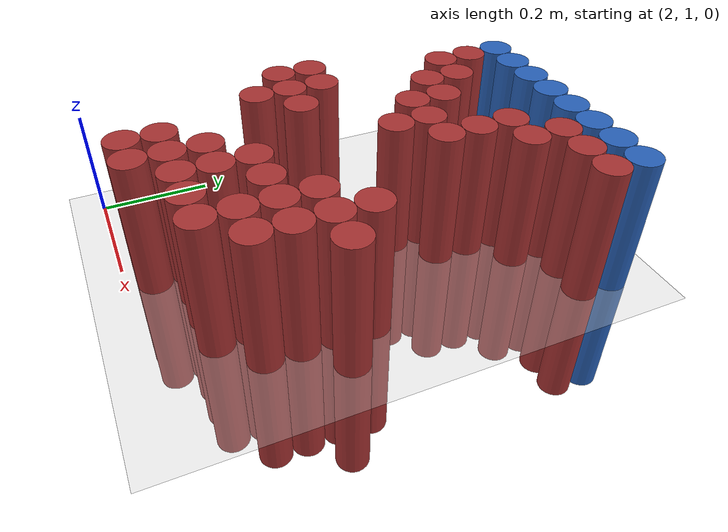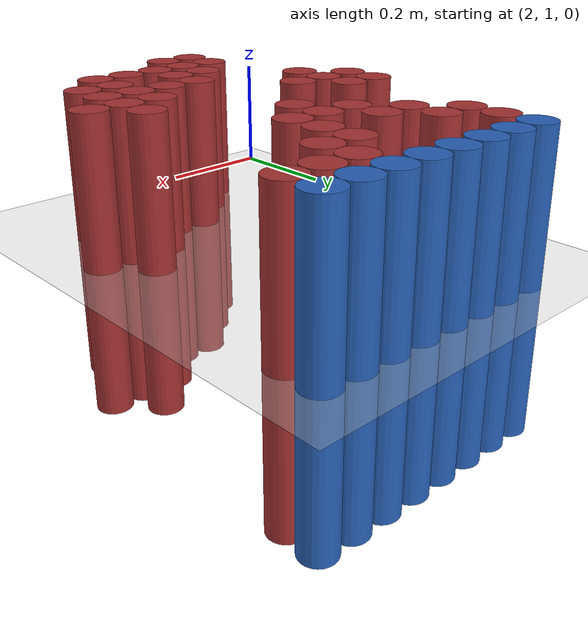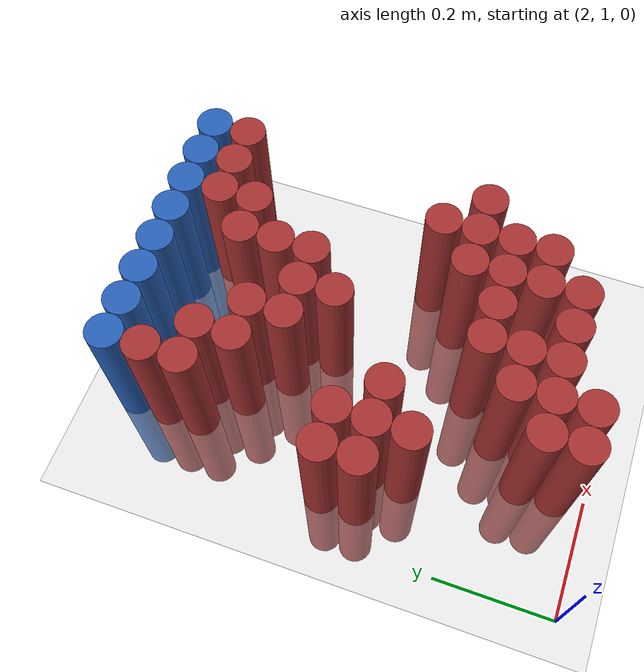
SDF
<sdf version="1.6">
 <world name="default">
  <model name="ground_plane">
   <static>1</static>
   <link name="link">
    <collision name="collision">
     <geometry><plane><normal>0 0 1</normal><size>100 100</size></plane></geometry>
     <surface><friction><ode><mu>100</mu><mu2>50</mu2></ode></friction></surface>
    </collision>
    <visual name="visual">
     <cast_shadows>0</cast_shadows>
     <geometry><plane><normal>0 0 1</normal><size>100 100</size></plane></geometry>
     <material>
      <script><uri>file://media/materials/scripts/gazebo.material</uri><name>Gazebo/Grey</name></script>
     </material>
    </visual>
   </link>
  </model>
  <model name="unit_cylinder_96">
   <static>1</static>
   <pose>2.130000 1.770000 0.000000 0.000000 0.000000 0.000000</pose>
   <link name="link">
    <inertial>
     <mass>1</mass>
     <inertia><ixx>0.145833</ixx><ixy>0</ixy><ixz>0</ixz><iyy>0.145833</iyy><iyz>0</iyz><izz>0.125</izz></inertia>
    </inertial>
    <collision name="collision">
     <geometry><cylinder><radius>0.030000</radius><length>0.5</length></cylinder></geometry>
    </collision>
    <visual name="visual">
     <geometry><cylinder><radius>0.030000</radius><length>0.5</length></cylinder></geometry>
     <material>
      <ambient>0.152000 0.379000 0.720000 1</ambient>
      <diffuse>0.152000 0.379000 0.720000 1</diffuse>
     </material>
     <material>
      <script><name>Gazebo/Grey</name><uri>file://media/materials/scripts/gazebo.material</uri></script>
     </material>
    </visual>
   </link>
  </model>
  <model name="unit_cylinder_97">
   <static>1</static>
   <pose>2.190000 1.770000 0.000000 0.000000 0.000000 0.000000</pose>
   <link name="link">
    <inertial>
     <mass>1</mass>
     <inertia><ixx>0.145833</ixx><ixy>0</ixy><ixz>0</ixz><iyy>0.145833</iyy><iyz>0</iyz><izz>0.125</izz></inertia>
    </inertial>
    <collision name="collision">
     <geometry><cylinder><radius>0.030000</radius><length>0.5</length></cylinder></geometry>
    </collision>
    <visual name="visual">
     <geometry><cylinder><radius>0.030000</radius><length>0.5</length></cylinder></geometry>
     <material>
      <ambient>0.152000 0.379000 0.720000 1</ambient>
      <diffuse>0.152000 0.379000 0.720000 1</diffuse>
     </material>
     <material>
      <script><name>Gazebo/Grey</name><uri>file://media/materials/scripts/gazebo.material</uri></script>
     </material>
    </visual>
   </link>
  </model>
  <model name="unit_cylinder_98">
   <static>1</static>
   <pose>2.250000 1.770000 0.000000 0.000000 0.000000 0.000000</pose>
   <link name="link">
    <inertial>
     <mass>1</mass>
     <inertia><ixx>0.145833</ixx><ixy>0</ixy><ixz>0</ixz><iyy>0.145833</iyy><iyz>0</iyz><izz>0.125</izz></inertia>
    </inertial>
    <collision name="collision">
     <geometry><cylinder><radius>0.030000</radius><length>0.5</length></cylinder></geometry>
    </collision>
    <visual name="visual">
     <geometry><cylinder><radius>0.030000</radius><length>0.5</length></cylinder></geometry>
     <material>
      <ambient>0.152000 0.379000 0.720000 1</ambient>
      <diffuse>0.152000 0.379000 0.720000 1</diffuse>
     </material>
     <material>
      <script><name>Gazebo/Grey</name><uri>file://media/materials/scripts/gazebo.material</uri></script>
     </material>
    </visual>
   </link>
  </model>
  <model name="unit_cylinder_99">
   <static>1</static>
   <pose>2.310000 1.770000 0.000000 0.000000 0.000000 0.000000</pose>
   <link name="link">
    <inertial>
     <mass>1</mass>
     <inertia><ixx>0.145833</ixx><ixy>0</ixy><ixz>0</ixz><iyy>0.145833</iyy><iyz>0</iyz><izz>0.125</izz></inertia>
    </inertial>
    <collision name="collision">
     <geometry><cylinder><radius>0.030000</radius><length>0.5</length></cylinder></geometry>
    </collision>
    <visual name="visual">
     <geometry><cylinder><radius>0.030000</radius><length>0.5</length></cylinder></geometry>
     <material>
      <ambient>0.152000 0.379000 0.720000 1</ambient>
      <diffuse>0.152000 0.379000 0.720000 1</diffuse>
     </material>
     <material>
      <script><name>Gazebo/Grey</name><uri>file://media/materials/scripts/gazebo.material</uri></script>
     </material>
    </visual>
   </link>
  </model>
  <model name="unit_cylinder_100">
   <static>1</static>
   <pose>2.370000 1.770000 0.000000 0.000000 0.000000 0.000000</pose>
   <link name="link">
    <inertial>
     <mass>1</mass>
     <inertia><ixx>0.145833</ixx><ixy>0</ixy><ixz>0</ixz><iyy>0.145833</iyy><iyz>0</iyz><izz>0.125</izz></inertia>
    </inertial>
    <collision name="collision">
     <geometry><cylinder><radius>0.030000</radius><length>0.5</length></cylinder></geometry>
    </collision>
    <visual name="visual">
     <geometry><cylinder><radius>0.030000</radius><length>0.5</length></cylinder></geometry>
     <material>
      <ambient>0.152000 0.379000 0.720000 1</ambient>
      <diffuse>0.152000 0.379000 0.720000 1</diffuse>
     </material>
     <material>
      <script><name>Gazebo/Grey</name><uri>file://media/materials/scripts/gazebo.material</uri></script>
     </material>
    </visual>
   </link>
  </model>
  <model name="unit_cylinder_101">
   <static>1</static>
   <pose>2.430000 1.770000 0.000000 0.000000 0.000000 0.000000</pose>
   <link name="link">
    <inertial>
     <mass>1</mass>
     <inertia><ixx>0.145833</ixx><ixy>0</ixy><ixz>0</ixz><iyy>0.145833</iyy><iyz>0</iyz><izz>0.125</izz></inertia>
    </inertial>
    <collision name="collision">
     <geometry><cylinder><radius>0.030000</radius><length>0.5</length></cylinder></geometry>
    </collision>
    <visual name="visual">
     <geometry><cylinder><radius>0.030000</radius><length>0.5</length></cylinder></geometry>
     <material>
      <ambient>0.152000 0.379000 0.720000 1</ambient>
      <diffuse>0.152000 0.379000 0.720000 1</diffuse>
     </material>
     <material>
      <script><name>Gazebo/Grey</name><uri>file://media/materials/scripts/gazebo.material</uri></script>
     </material>
    </visual>
   </link>
  </model>
  <model name="unit_cylinder_102">
   <static>1</static>
   <pose>2.490000 1.770000 0.000000 0.000000 0.000000 0.000000</pose>
   <link name="link">
    <inertial>
     <mass>1</mass>
     <inertia><ixx>0.145833</ixx><ixy>0</ixy><ixz>0</ixz><iyy>0.145833</iyy><iyz>0</iyz><izz>0.125</izz></inertia>
    </inertial>
    <collision name="collision">
     <geometry><cylinder><radius>0.030000</radius><length>0.5</length></cylinder></geometry>
    </collision>
    <visual name="visual">
     <geometry><cylinder><radius>0.030000</radius><length>0.5</length></cylinder></geometry>
     <material>
      <ambient>0.152000 0.379000 0.720000 1</ambient>
      <diffuse>0.152000 0.379000 0.720000 1</diffuse>
     </material>
     <material>
      <script><name>Gazebo/Grey</name><uri>file://media/materials/scripts/gazebo.material</uri></script>
     </material>
    </visual>
   </link>
  </model>
  <model name="unit_cylinder_103">
   <static>1</static>
   <pose>2.550000 1.770000 0.000000 0.000000 0.000000 0.000000</pose>
   <link name="link">
    <inertial>
     <mass>1</mass>
     <inertia><ixx>0.145833</ixx><ixy>0</ixy><ixz>0</ixz><iyy>0.145833</iyy><iyz>0</iyz><izz>0.125</izz></inertia>
    </inertial>
    <collision name="collision">
     <geometry><cylinder><radius>0.030000</radius><length>0.5</length></cylinder></geometry>
    </collision>
    <visual name="visual">
     <geometry><cylinder><radius>0.030000</radius><length>0.5</length></cylinder></geometry>
     <material>
      <ambient>0.152000 0.379000 0.720000 1</ambient>
      <diffuse>0.152000 0.379000 0.720000 1</diffuse>
     </material>
     <material>
      <script><name>Gazebo/Grey</name><uri>file://media/materials/scripts/gazebo.material</uri></script>
     </material>
    </visual>
   </link>
  </model>
  <model name="unit_cylinder_126">
   <static>1</static>
   <pose>2.130000 1.710000 0.000000 0.000000 0.000000 0.000000</pose>
   <link name="link">
    <inertial>
     <mass>1</mass>
     <inertia><ixx>0.145833</ixx><ixy>0</ixy><ixz>0</ixz><iyy>0.145833</iyy><iyz>0</iyz><izz>0.125</izz></inertia>
    </inertial>
    <collision name="collision">
     <geometry><cylinder><radius>0.030000</radius><length>0.5</length></cylinder></geometry>
    </collision>
    <visual name="visual">
     <geometry><cylinder><radius>0.030000</radius><length>0.5</length></cylinder></geometry>
     <material>
      <ambient>0.648000 0.192000 0.192000 1</ambient>
      <diffuse>0.648000 0.192000 0.192000 1</diffuse>
     </material>
     <material>
      <script><name>Gazebo/Grey</name><uri>file://media/materials/scripts/gazebo.material</uri></script>
     </material>
    </visual>
   </link>
  </model>
  <model name="unit_cylinder_127">
   <static>1</static>
   <pose>2.430000 1.710000 0.000000 0.000000 0.000000 0.000000</pose>
   <link name="link">
    <inertial>
     <mass>1</mass>
     <inertia><ixx>0.145833</ixx><ixy>0</ixy><ixz>0</ixz><iyy>0.145833</iyy><iyz>0</iyz><izz>0.125</izz></inertia>
    </inertial>
    <collision name="collision">
     <geometry><cylinder><radius>0.030000</radius><length>0.5</length></cylinder></geometry>
    </collision>
    <visual name="visual">
     <geometry><cylinder><radius>0.030000</radius><length>0.5</length></cylinder></geometry>
     <material>
      <ambient>0.648000 0.192000 0.192000 1</ambient>
      <diffuse>0.648000 0.192000 0.192000 1</diffuse>
     </material>
     <material>
      <script><name>Gazebo/Grey</name><uri>file://media/materials/scripts/gazebo.material</uri></script>
     </material>
    </visual>
   </link>
  </model>
  <model name="unit_cylinder_128">
   <static>1</static>
   <pose>2.490000 1.710000 0.000000 0.000000 0.000000 0.000000</pose>
   <link name="link">
    <inertial>
     <mass>1</mass>
     <inertia><ixx>0.145833</ixx><ixy>0</ixy><ixz>0</ixz><iyy>0.145833</iyy><iyz>0</iyz><izz>0.125</izz></inertia>
    </inertial>
    <collision name="collision">
     <geometry><cylinder><radius>0.030000</radius><length>0.5</length></cylinder></geometry>
    </collision>
    <visual name="visual">
     <geometry><cylinder><radius>0.030000</radius><length>0.5</length></cylinder></geometry>
     <material>
      <ambient>0.648000 0.192000 0.192000 1</ambient>
      <diffuse>0.648000 0.192000 0.192000 1</diffuse>
     </material>
     <material>
      <script><name>Gazebo/Grey</name><uri>file://media/materials/scripts/gazebo.material</uri></script>
     </material>
    </visual>
   </link>
  </model>
  <model name="unit_cylinder_129">
   <static>1</static>
   <pose>2.550000 1.710000 0.000000 0.000000 0.000000 0.000000</pose>
   <link name="link">
    <inertial>
     <mass>1</mass>
     <inertia><ixx>0.145833</ixx><ixy>0</ixy><ixz>0</ixz><iyy>0.145833</iyy><iyz>0</iyz><izz>0.125</izz></inertia>
    </inertial>
    <collision name="collision">
     <geometry><cylinder><radius>0.030000</radius><length>0.5</length></cylinder></geometry>
    </collision>
    <visual name="visual">
     <geometry><cylinder><radius>0.030000</radius><length>0.5</length></cylinder></geometry>
     <material>
      <ambient>0.648000 0.192000 0.192000 1</ambient>
      <diffuse>0.648000 0.192000 0.192000 1</diffuse>
     </material>
     <material>
      <script><name>Gazebo/Grey</name><uri>file://media/materials/scripts/gazebo.material</uri></script>
     </material>
    </visual>
   </link>
  </model>
  <model name="unit_cylinder_139">
   <static>1</static>
   <pose>2.130000 1.650000 0.000000 0.000000 0.000000 0.000000</pose>
   <link name="link">
    <inertial>
     <mass>1</mass>
     <inertia><ixx>0.145833</ixx><ixy>0</ixy><ixz>0</ixz><iyy>0.145833</iyy><iyz>0</iyz><izz>0.125</izz></inertia>
    </inertial>
    <collision name="collision">
     <geometry><cylinder><radius>0.030000</radius><length>0.5</length></cylinder></geometry>
    </collision>
    <visual name="visual">
     <geometry><cylinder><radius>0.030000</radius><length>0.5</length></cylinder></geometry>
     <material>
      <ambient>0.648000 0.192000 0.192000 1</ambient>
      <diffuse>0.648000 0.192000 0.192000 1</diffuse>
     </material>
     <material>
      <script><name>Gazebo/Grey</name><uri>file://media/materials/scripts/gazebo.material</uri></script>
     </material>
    </visual>
   </link>
  </model>
  <model name="unit_cylinder_140">
   <static>1</static>
   <pose>2.190000 1.650000 0.000000 0.000000 0.000000 0.000000</pose>
   <link name="link">
    <inertial>
     <mass>1</mass>
     <inertia><ixx>0.145833</ixx><ixy>0</ixy><ixz>0</ixz><iyy>0.145833</iyy><iyz>0</iyz><izz>0.125</izz></inertia>
    </inertial>
    <collision name="collision">
     <geometry><cylinder><radius>0.030000</radius><length>0.5</length></cylinder></geometry>
    </collision>
    <visual name="visual">
     <geometry><cylinder><radius>0.030000</radius><length>0.5</length></cylinder></geometry>
     <material>
      <ambient>0.648000 0.192000 0.192000 1</ambient>
      <diffuse>0.648000 0.192000 0.192000 1</diffuse>
     </material>
     <material>
      <script><name>Gazebo/Grey</name><uri>file://media/materials/scripts/gazebo.material</uri></script>
     </material>
    </visual>
   </link>
  </model>
  <model name="unit_cylinder_141">
   <static>1</static>
   <pose>2.370000 1.650000 0.000000 0.000000 0.000000 0.000000</pose>
   <link name="link">
    <inertial>
     <mass>1</mass>
     <inertia><ixx>0.145833</ixx><ixy>0</ixy><ixz>0</ixz><iyy>0.145833</iyy><iyz>0</iyz><izz>0.125</izz></inertia>
    </inertial>
    <collision name="collision">
     <geometry><cylinder><radius>0.030000</radius><length>0.5</length></cylinder></geometry>
    </collision>
    <visual name="visual">
     <geometry><cylinder><radius>0.030000</radius><length>0.5</length></cylinder></geometry>
     <material>
      <ambient>0.648000 0.192000 0.192000 1</ambient>
      <diffuse>0.648000 0.192000 0.192000 1</diffuse>
     </material>
     <material>
      <script><name>Gazebo/Grey</name><uri>file://media/materials/scripts/gazebo.material</uri></script>
     </material>
    </visual>
   </link>
  </model>
  <model name="unit_cylinder_142">
   <static>1</static>
   <pose>2.430000 1.650000 0.000000 0.000000 0.000000 0.000000</pose>
   <link name="link">
    <inertial>
     <mass>1</mass>
     <inertia><ixx>0.145833</ixx><ixy>0</ixy><ixz>0</ixz><iyy>0.145833</iyy><iyz>0</iyz><izz>0.125</izz></inertia>
    </inertial>
    <collision name="collision">
     <geometry><cylinder><radius>0.030000</radius><length>0.5</length></cylinder></geometry>
    </collision>
    <visual name="visual">
     <geometry><cylinder><radius>0.030000</radius><length>0.5</length></cylinder></geometry>
     <material>
      <ambient>0.648000 0.192000 0.192000 1</ambient>
      <diffuse>0.648000 0.192000 0.192000 1</diffuse>
     </material>
     <material>
      <script><name>Gazebo/Grey</name><uri>file://media/materials/scripts/gazebo.material</uri></script>
     </material>
    </visual>
   </link>
  </model>
  <model name="unit_cylinder_147">
   <static>1</static>
   <pose>2.190000 1.590000 0.000000 0.000000 0.000000 0.000000</pose>
   <link name="link">
    <inertial>
     <mass>1</mass>
     <inertia><ixx>0.145833</ixx><ixy>0</ixy><ixz>0</ixz><iyy>0.145833</iyy><iyz>0</iyz><izz>0.125</izz></inertia>
    </inertial>
    <collision name="collision">
     <geometry><cylinder><radius>0.030000</radius><length>0.5</length></cylinder></geometry>
    </collision>
    <visual name="visual">
     <geometry><cylinder><radius>0.030000</radius><length>0.5</length></cylinder></geometry>
     <material>
      <ambient>0.648000 0.192000 0.192000 1</ambient>
      <diffuse>0.648000 0.192000 0.192000 1</diffuse>
     </material>
     <material>
      <script><name>Gazebo/Grey</name><uri>file://media/materials/scripts/gazebo.material</uri></script>
     </material>
    </visual>
   </link>
  </model>
  <model name="unit_cylinder_148">
   <static>1</static>
   <pose>2.250000 1.590000 0.000000 0.000000 0.000000 0.000000</pose>
   <link name="link">
    <inertial>
     <mass>1</mass>
     <inertia><ixx>0.145833</ixx><ixy>0</ixy><ixz>0</ixz><iyy>0.145833</iyy><iyz>0</iyz><izz>0.125</izz></inertia>
    </inertial>
    <collision name="collision">
     <geometry><cylinder><radius>0.030000</radius><length>0.5</length></cylinder></geometry>
    </collision>
    <visual name="visual">
     <geometry><cylinder><radius>0.030000</radius><length>0.5</length></cylinder></geometry>
     <material>
      <ambient>0.648000 0.192000 0.192000 1</ambient>
      <diffuse>0.648000 0.192000 0.192000 1</diffuse>
     </material>
     <material>
      <script><name>Gazebo/Grey</name><uri>file://media/materials/scripts/gazebo.material</uri></script>
     </material>
    </visual>
   </link>
  </model>
  <model name="unit_cylinder_149">
   <static>1</static>
   <pose>2.370000 1.590000 0.000000 0.000000 0.000000 0.000000</pose>
   <link name="link">
    <inertial>
     <mass>1</mass>
     <inertia><ixx>0.145833</ixx><ixy>0</ixy><ixz>0</ixz><iyy>0.145833</iyy><iyz>0</iyz><izz>0.125</izz></inertia>
    </inertial>
    <collision name="collision">
     <geometry><cylinder><radius>0.030000</radius><length>0.5</length></cylinder></geometry>
    </collision>
    <visual name="visual">
     <geometry><cylinder><radius>0.030000</radius><length>0.5</length></cylinder></geometry>
     <material>
      <ambient>0.648000 0.192000 0.192000 1</ambient>
      <diffuse>0.648000 0.192000 0.192000 1</diffuse>
     </material>
     <material>
      <script><name>Gazebo/Grey</name><uri>file://media/materials/scripts/gazebo.material</uri></script>
     </material>
    </visual>
   </link>
  </model>
  <model name="unit_cylinder_161">
   <static>1</static>
   <pose>2.250000 1.530000 0.000000 0.000000 0.000000 0.000000</pose>
   <link name="link">
    <inertial>
     <mass>1</mass>
     <inertia><ixx>0.145833</ixx><ixy>0</ixy><ixz>0</ixz><iyy>0.145833</iyy><iyz>0</iyz><izz>0.125</izz></inertia>
    </inertial>
    <collision name="collision">
     <geometry><cylinder><radius>0.030000</radius><length>0.5</length></cylinder></geometry>
    </collision>
    <visual name="visual">
     <geometry><cylinder><radius>0.030000</radius><length>0.5</length></cylinder></geometry>
     <material>
      <ambient>0.648000 0.192000 0.192000 1</ambient>
      <diffuse>0.648000 0.192000 0.192000 1</diffuse>
     </material>
     <material>
      <script><name>Gazebo/Grey</name><uri>file://media/materials/scripts/gazebo.material</uri></script>
     </material>
    </visual>
   </link>
  </model>
  <model name="unit_cylinder_162">
   <static>1</static>
   <pose>2.310000 1.530000 0.000000 0.000000 0.000000 0.000000</pose>
   <link name="link">
    <inertial>
     <mass>1</mass>
     <inertia><ixx>0.145833</ixx><ixy>0</ixy><ixz>0</ixz><iyy>0.145833</iyy><iyz>0</iyz><izz>0.125</izz></inertia>
    </inertial>
    <collision name="collision">
     <geometry><cylinder><radius>0.030000</radius><length>0.5</length></cylinder></geometry>
    </collision>
    <visual name="visual">
     <geometry><cylinder><radius>0.030000</radius><length>0.5</length></cylinder></geometry>
     <material>
      <ambient>0.648000 0.192000 0.192000 1</ambient>
      <diffuse>0.648000 0.192000 0.192000 1</diffuse>
     </material>
     <material>
      <script><name>Gazebo/Grey</name><uri>file://media/materials/scripts/gazebo.material</uri></script>
     </material>
    </visual>
   </link>
  </model>
  <model name="unit_cylinder_163">
   <static>1</static>
   <pose>2.370000 1.530000 0.000000 0.000000 0.000000 0.000000</pose>
   <link name="link">
    <inertial>
     <mass>1</mass>
     <inertia><ixx>0.145833</ixx><ixy>0</ixy><ixz>0</ixz><iyy>0.145833</iyy><iyz>0</iyz><izz>0.125</izz></inertia>
    </inertial>
    <collision name="collision">
     <geometry><cylinder><radius>0.030000</radius><length>0.5</length></cylinder></geometry>
    </collision>
    <visual name="visual">
     <geometry><cylinder><radius>0.030000</radius><length>0.5</length></cylinder></geometry>
     <material>
      <ambient>0.648000 0.192000 0.192000 1</ambient>
      <diffuse>0.648000 0.192000 0.192000 1</diffuse>
     </material>
     <material>
      <script><name>Gazebo/Grey</name><uri>file://media/materials/scripts/gazebo.material</uri></script>
     </material>
    </visual>
   </link>
  </model>
  <model name="unit_cylinder_175">
   <static>1</static>
   <pose>2.310000 1.470000 0.000000 0.000000 0.000000 0.000000</pose>
   <link name="link">
    <inertial>
     <mass>1</mass>
     <inertia><ixx>0.145833</ixx><ixy>0</ixy><ixz>0</ixz><iyy>0.145833</iyy><iyz>0</iyz><izz>0.125</izz></inertia>
    </inertial>
    <collision name="collision">
     <geometry><cylinder><radius>0.030000</radius><length>0.5</length></cylinder></geometry>
    </collision>
    <visual name="visual">
     <geometry><cylinder><radius>0.030000</radius><length>0.5</length></cylinder></geometry>
     <material>
      <ambient>0.648000 0.192000 0.192000 1</ambient>
      <diffuse>0.648000 0.192000 0.192000 1</diffuse>
     </material>
     <material>
      <script><name>Gazebo/Grey</name><uri>file://media/materials/scripts/gazebo.material</uri></script>
     </material>
    </visual>
   </link>
  </model>
  <model name="unit_cylinder_188">
   <static>1</static>
   <pose>2.070000 1.410000 0.000000 0.000000 0.000000 0.000000</pose>
   <link name="link">
    <inertial>
     <mass>1</mass>
     <inertia><ixx>0.145833</ixx><ixy>0</ixy><ixz>0</ixz><iyy>0.145833</iyy><iyz>0</iyz><izz>0.125</izz></inertia>
    </inertial>
    <collision name="collision">
     <geometry><cylinder><radius>0.030000</radius><length>0.5</length></cylinder></geometry>
    </collision>
    <visual name="visual">
     <geometry><cylinder><radius>0.030000</radius><length>0.5</length></cylinder></geometry>
     <material>
      <ambient>0.648000 0.192000 0.192000 1</ambient>
      <diffuse>0.648000 0.192000 0.192000 1</diffuse>
     </material>
     <material>
      <script><name>Gazebo/Grey</name><uri>file://media/materials/scripts/gazebo.material</uri></script>
     </material>
    </visual>
   </link>
  </model>
  <model name="unit_cylinder_189">
   <static>1</static>
   <pose>2.130000 1.410000 0.000000 0.000000 0.000000 0.000000</pose>
   <link name="link">
    <inertial>
     <mass>1</mass>
     <inertia><ixx>0.145833</ixx><ixy>0</ixy><ixz>0</ixz><iyy>0.145833</iyy><iyz>0</iyz><izz>0.125</izz></inertia>
    </inertial>
    <collision name="collision">
     <geometry><cylinder><radius>0.030000</radius><length>0.5</length></cylinder></geometry>
    </collision>
    <visual name="visual">
     <geometry><cylinder><radius>0.030000</radius><length>0.5</length></cylinder></geometry>
     <material>
      <ambient>0.648000 0.192000 0.192000 1</ambient>
      <diffuse>0.648000 0.192000 0.192000 1</diffuse>
     </material>
     <material>
      <script><name>Gazebo/Grey</name><uri>file://media/materials/scripts/gazebo.material</uri></script>
     </material>
    </visual>
   </link>
  </model>
  <model name="unit_cylinder_198">
   <static>1</static>
   <pose>2.070000 1.350000 0.000000 0.000000 0.000000 0.000000</pose>
   <link name="link">
    <inertial>
     <mass>1</mass>
     <inertia><ixx>0.145833</ixx><ixy>0</ixy><ixz>0</ixz><iyy>0.145833</iyy><iyz>0</iyz><izz>0.125</izz></inertia>
    </inertial>
    <collision name="collision">
     <geometry><cylinder><radius>0.030000</radius><length>0.5</length></cylinder></geometry>
    </collision>
    <visual name="visual">
     <geometry><cylinder><radius>0.030000</radius><length>0.5</length></cylinder></geometry>
     <material>
      <ambient>0.648000 0.192000 0.192000 1</ambient>
      <diffuse>0.648000 0.192000 0.192000 1</diffuse>
     </material>
     <material>
      <script><name>Gazebo/Grey</name><uri>file://media/materials/scripts/gazebo.material</uri></script>
     </material>
    </visual>
   </link>
  </model>
  <model name="unit_cylinder_199">
   <static>1</static>
   <pose>2.130000 1.350000 0.000000 0.000000 0.000000 0.000000</pose>
   <link name="link">
    <inertial>
     <mass>1</mass>
     <inertia><ixx>0.145833</ixx><ixy>0</ixy><ixz>0</ixz><iyy>0.145833</iyy><iyz>0</iyz><izz>0.125</izz></inertia>
    </inertial>
    <collision name="collision">
     <geometry><cylinder><radius>0.030000</radius><length>0.5</length></cylinder></geometry>
    </collision>
    <visual name="visual">
     <geometry><cylinder><radius>0.030000</radius><length>0.5</length></cylinder></geometry>
     <material>
      <ambient>0.648000 0.192000 0.192000 1</ambient>
      <diffuse>0.648000 0.192000 0.192000 1</diffuse>
     </material>
     <material>
      <script><name>Gazebo/Grey</name><uri>file://media/materials/scripts/gazebo.material</uri></script>
     </material>
    </visual>
   </link>
  </model>
  <model name="unit_cylinder_200">
   <static>1</static>
   <pose>2.190000 1.350000 0.000000 0.000000 0.000000 0.000000</pose>
   <link name="link">
    <inertial>
     <mass>1</mass>
     <inertia><ixx>0.145833</ixx><ixy>0</ixy><ixz>0</ixz><iyy>0.145833</iyy><iyz>0</iyz><izz>0.125</izz></inertia>
    </inertial>
    <collision name="collision">
     <geometry><cylinder><radius>0.030000</radius><length>0.5</length></cylinder></geometry>
    </collision>
    <visual name="visual">
     <geometry><cylinder><radius>0.030000</radius><length>0.5</length></cylinder></geometry>
     <material>
      <ambient>0.648000 0.192000 0.192000 1</ambient>
      <diffuse>0.648000 0.192000 0.192000 1</diffuse>
     </material>
     <material>
      <script><name>Gazebo/Grey</name><uri>file://media/materials/scripts/gazebo.material</uri></script>
     </material>
    </visual>
   </link>
  </model>
  <model name="unit_cylinder_201">
   <static>1</static>
   <pose>2.490000 1.350000 0.000000 0.000000 0.000000 0.000000</pose>
   <link name="link">
    <inertial>
     <mass>1</mass>
     <inertia><ixx>0.145833</ixx><ixy>0</ixy><ixz>0</ixz><iyy>0.145833</iyy><iyz>0</iyz><izz>0.125</izz></inertia>
    </inertial>
    <collision name="collision">
     <geometry><cylinder><radius>0.030000</radius><length>0.5</length></cylinder></geometry>
    </collision>
    <visual name="visual">
     <geometry><cylinder><radius>0.030000</radius><length>0.5</length></cylinder></geometry>
     <material>
      <ambient>0.648000 0.192000 0.192000 1</ambient>
      <diffuse>0.648000 0.192000 0.192000 1</diffuse>
     </material>
     <material>
      <script><name>Gazebo/Grey</name><uri>file://media/materials/scripts/gazebo.material</uri></script>
     </material>
    </visual>
   </link>
  </model>
  <model name="unit_cylinder_205">
   <static>1</static>
   <pose>2.130000 1.290000 0.000000 0.000000 0.000000 0.000000</pose>
   <link name="link">
    <inertial>
     <mass>1</mass>
     <inertia><ixx>0.145833</ixx><ixy>0</ixy><ixz>0</ixz><iyy>0.145833</iyy><iyz>0</iyz><izz>0.125</izz></inertia>
    </inertial>
    <collision name="collision">
     <geometry><cylinder><radius>0.030000</radius><length>0.5</length></cylinder></geometry>
    </collision>
    <visual name="visual">
     <geometry><cylinder><radius>0.030000</radius><length>0.5</length></cylinder></geometry>
     <material>
      <ambient>0.648000 0.192000 0.192000 1</ambient>
      <diffuse>0.648000 0.192000 0.192000 1</diffuse>
     </material>
     <material>
      <script><name>Gazebo/Grey</name><uri>file://media/materials/scripts/gazebo.material</uri></script>
     </material>
    </visual>
   </link>
  </model>
  <model name="unit_cylinder_206">
   <static>1</static>
   <pose>2.430000 1.290000 0.000000 0.000000 0.000000 0.000000</pose>
   <link name="link">
    <inertial>
     <mass>1</mass>
     <inertia><ixx>0.145833</ixx><ixy>0</ixy><ixz>0</ixz><iyy>0.145833</iyy><iyz>0</iyz><izz>0.125</izz></inertia>
    </inertial>
    <collision name="collision">
     <geometry><cylinder><radius>0.030000</radius><length>0.5</length></cylinder></geometry>
    </collision>
    <visual name="visual">
     <geometry><cylinder><radius>0.030000</radius><length>0.5</length></cylinder></geometry>
     <material>
      <ambient>0.648000 0.192000 0.192000 1</ambient>
      <diffuse>0.648000 0.192000 0.192000 1</diffuse>
     </material>
     <material>
      <script><name>Gazebo/Grey</name><uri>file://media/materials/scripts/gazebo.material</uri></script>
     </material>
    </visual>
   </link>
  </model>
  <model name="unit_cylinder_207">
   <static>1</static>
   <pose>2.490000 1.290000 0.000000 0.000000 0.000000 0.000000</pose>
   <link name="link">
    <inertial>
     <mass>1</mass>
     <inertia><ixx>0.145833</ixx><ixy>0</ixy><ixz>0</ixz><iyy>0.145833</iyy><iyz>0</iyz><izz>0.125</izz></inertia>
    </inertial>
    <collision name="collision">
     <geometry><cylinder><radius>0.030000</radius><length>0.5</length></cylinder></geometry>
    </collision>
    <visual name="visual">
     <geometry><cylinder><radius>0.030000</radius><length>0.5</length></cylinder></geometry>
     <material>
      <ambient>0.648000 0.192000 0.192000 1</ambient>
      <diffuse>0.648000 0.192000 0.192000 1</diffuse>
     </material>
     <material>
      <script><name>Gazebo/Grey</name><uri>file://media/materials/scripts/gazebo.material</uri></script>
     </material>
    </visual>
   </link>
  </model>
  <model name="unit_cylinder_208">
   <static>1</static>
   <pose>2.550000 1.290000 0.000000 0.000000 0.000000 0.000000</pose>
   <link name="link">
    <inertial>
     <mass>1</mass>
     <inertia><ixx>0.145833</ixx><ixy>0</ixy><ixz>0</ixz><iyy>0.145833</iyy><iyz>0</iyz><izz>0.125</izz></inertia>
    </inertial>
    <collision name="collision">
     <geometry><cylinder><radius>0.030000</radius><length>0.5</length></cylinder></geometry>
    </collision>
    <visual name="visual">
     <geometry><cylinder><radius>0.030000</radius><length>0.5</length></cylinder></geometry>
     <material>
      <ambient>0.648000 0.192000 0.192000 1</ambient>
      <diffuse>0.648000 0.192000 0.192000 1</diffuse>
     </material>
     <material>
      <script><name>Gazebo/Grey</name><uri>file://media/materials/scripts/gazebo.material</uri></script>
     </material>
    </visual>
   </link>
  </model>
  <model name="unit_cylinder_214">
   <static>1</static>
   <pose>2.310000 1.230000 0.000000 0.000000 0.000000 0.000000</pose>
   <link name="link">
    <inertial>
     <mass>1</mass>
     <inertia><ixx>0.145833</ixx><ixy>0</ixy><ixz>0</ixz><iyy>0.145833</iyy><iyz>0</iyz><izz>0.125</izz></inertia>
    </inertial>
    <collision name="collision">
     <geometry><cylinder><radius>0.030000</radius><length>0.5</length></cylinder></geometry>
    </collision>
    <visual name="visual">
     <geometry><cylinder><radius>0.030000</radius><length>0.5</length></cylinder></geometry>
     <material>
      <ambient>0.648000 0.192000 0.192000 1</ambient>
      <diffuse>0.648000 0.192000 0.192000 1</diffuse>
     </material>
     <material>
      <script><name>Gazebo/Grey</name><uri>file://media/materials/scripts/gazebo.material</uri></script>
     </material>
    </visual>
   </link>
  </model>
  <model name="unit_cylinder_215">
   <static>1</static>
   <pose>2.370000 1.230000 0.000000 0.000000 0.000000 0.000000</pose>
   <link name="link">
    <inertial>
     <mass>1</mass>
     <inertia><ixx>0.145833</ixx><ixy>0</ixy><ixz>0</ixz><iyy>0.145833</iyy><iyz>0</iyz><izz>0.125</izz></inertia>
    </inertial>
    <collision name="collision">
     <geometry><cylinder><radius>0.030000</radius><length>0.5</length></cylinder></geometry>
    </collision>
    <visual name="visual">
     <geometry><cylinder><radius>0.030000</radius><length>0.5</length></cylinder></geometry>
     <material>
      <ambient>0.648000 0.192000 0.192000 1</ambient>
      <diffuse>0.648000 0.192000 0.192000 1</diffuse>
     </material>
     <material>
      <script><name>Gazebo/Grey</name><uri>file://media/materials/scripts/gazebo.material</uri></script>
     </material>
    </visual>
   </link>
  </model>
  <model name="unit_cylinder_216">
   <static>1</static>
   <pose>2.430000 1.230000 0.000000 0.000000 0.000000 0.000000</pose>
   <link name="link">
    <inertial>
     <mass>1</mass>
     <inertia><ixx>0.145833</ixx><ixy>0</ixy><ixz>0</ixz><iyy>0.145833</iyy><iyz>0</iyz><izz>0.125</izz></inertia>
    </inertial>
    <collision name="collision">
     <geometry><cylinder><radius>0.030000</radius><length>0.5</length></cylinder></geometry>
    </collision>
    <visual name="visual">
     <geometry><cylinder><radius>0.030000</radius><length>0.5</length></cylinder></geometry>
     <material>
      <ambient>0.648000 0.192000 0.192000 1</ambient>
      <diffuse>0.648000 0.192000 0.192000 1</diffuse>
     </material>
     <material>
      <script><name>Gazebo/Grey</name><uri>file://media/materials/scripts/gazebo.material</uri></script>
     </material>
    </visual>
   </link>
  </model>
  <model name="unit_cylinder_217">
   <static>1</static>
   <pose>2.490000 1.230000 0.000000 0.000000 0.000000 0.000000</pose>
   <link name="link">
    <inertial>
     <mass>1</mass>
     <inertia><ixx>0.145833</ixx><ixy>0</ixy><ixz>0</ixz><iyy>0.145833</iyy><iyz>0</iyz><izz>0.125</izz></inertia>
    </inertial>
    <collision name="collision">
     <geometry><cylinder><radius>0.030000</radius><length>0.5</length></cylinder></geometry>
    </collision>
    <visual name="visual">
     <geometry><cylinder><radius>0.030000</radius><length>0.5</length></cylinder></geometry>
     <material>
      <ambient>0.648000 0.192000 0.192000 1</ambient>
      <diffuse>0.648000 0.192000 0.192000 1</diffuse>
     </material>
     <material>
      <script><name>Gazebo/Grey</name><uri>file://media/materials/scripts/gazebo.material</uri></script>
     </material>
    </visual>
   </link>
  </model>
  <model name="unit_cylinder_221">
   <static>1</static>
   <pose>2.250000 1.170000 0.000000 0.000000 0.000000 0.000000</pose>
   <link name="link">
    <inertial>
     <mass>1</mass>
     <inertia><ixx>0.145833</ixx><ixy>0</ixy><ixz>0</ixz><iyy>0.145833</iyy><iyz>0</iyz><izz>0.125</izz></inertia>
    </inertial>
    <collision name="collision">
     <geometry><cylinder><radius>0.030000</radius><length>0.5</length></cylinder></geometry>
    </collision>
    <visual name="visual">
     <geometry><cylinder><radius>0.030000</radius><length>0.5</length></cylinder></geometry>
     <material>
      <ambient>0.648000 0.192000 0.192000 1</ambient>
      <diffuse>0.648000 0.192000 0.192000 1</diffuse>
     </material>
     <material>
      <script><name>Gazebo/Grey</name><uri>file://media/materials/scripts/gazebo.material</uri></script>
     </material>
    </visual>
   </link>
  </model>
  <model name="unit_cylinder_222">
   <static>1</static>
   <pose>2.310000 1.170000 0.000000 0.000000 0.000000 0.000000</pose>
   <link name="link">
    <inertial>
     <mass>1</mass>
     <inertia><ixx>0.145833</ixx><ixy>0</ixy><ixz>0</ixz><iyy>0.145833</iyy><iyz>0</iyz><izz>0.125</izz></inertia>
    </inertial>
    <collision name="collision">
     <geometry><cylinder><radius>0.030000</radius><length>0.5</length></cylinder></geometry>
    </collision>
    <visual name="visual">
     <geometry><cylinder><radius>0.030000</radius><length>0.5</length></cylinder></geometry>
     <material>
      <ambient>0.648000 0.192000 0.192000 1</ambient>
      <diffuse>0.648000 0.192000 0.192000 1</diffuse>
     </material>
     <material>
      <script><name>Gazebo/Grey</name><uri>file://media/materials/scripts/gazebo.material</uri></script>
     </material>
    </visual>
   </link>
  </model>
  <model name="unit_cylinder_223">
   <static>1</static>
   <pose>2.430000 1.170000 0.000000 0.000000 0.000000 0.000000</pose>
   <link name="link">
    <inertial>
     <mass>1</mass>
     <inertia><ixx>0.145833</ixx><ixy>0</ixy><ixz>0</ixz><iyy>0.145833</iyy><iyz>0</iyz><izz>0.125</izz></inertia>
    </inertial>
    <collision name="collision">
     <geometry><cylinder><radius>0.030000</radius><length>0.5</length></cylinder></geometry>
    </collision>
    <visual name="visual">
     <geometry><cylinder><radius>0.030000</radius><length>0.5</length></cylinder></geometry>
     <material>
      <ambient>0.648000 0.192000 0.192000 1</ambient>
      <diffuse>0.648000 0.192000 0.192000 1</diffuse>
     </material>
     <material>
      <script><name>Gazebo/Grey</name><uri>file://media/materials/scripts/gazebo.material</uri></script>
     </material>
    </visual>
   </link>
  </model>
  <model name="unit_cylinder_224">
   <static>1</static>
   <pose>2.490000 1.170000 0.000000 0.000000 0.000000 0.000000</pose>
   <link name="link">
    <inertial>
     <mass>1</mass>
     <inertia><ixx>0.145833</ixx><ixy>0</ixy><ixz>0</ixz><iyy>0.145833</iyy><iyz>0</iyz><izz>0.125</izz></inertia>
    </inertial>
    <collision name="collision">
     <geometry><cylinder><radius>0.030000</radius><length>0.5</length></cylinder></geometry>
    </collision>
    <visual name="visual">
     <geometry><cylinder><radius>0.030000</radius><length>0.5</length></cylinder></geometry>
     <material>
      <ambient>0.648000 0.192000 0.192000 1</ambient>
      <diffuse>0.648000 0.192000 0.192000 1</diffuse>
     </material>
     <material>
      <script><name>Gazebo/Grey</name><uri>file://media/materials/scripts/gazebo.material</uri></script>
     </material>
    </visual>
   </link>
  </model>
  <model name="unit_cylinder_227">
   <static>1</static>
   <pose>2.190000 1.110000 0.000000 0.000000 0.000000 0.000000</pose>
   <link name="link">
    <inertial>
     <mass>1</mass>
     <inertia><ixx>0.145833</ixx><ixy>0</ixy><ixz>0</ixz><iyy>0.145833</iyy><iyz>0</iyz><izz>0.125</izz></inertia>
    </inertial>
    <collision name="collision">
     <geometry><cylinder><radius>0.030000</radius><length>0.5</length></cylinder></geometry>
    </collision>
    <visual name="visual">
     <geometry><cylinder><radius>0.030000</radius><length>0.5</length></cylinder></geometry>
     <material>
      <ambient>0.648000 0.192000 0.192000 1</ambient>
      <diffuse>0.648000 0.192000 0.192000 1</diffuse>
     </material>
     <material>
      <script><name>Gazebo/Grey</name><uri>file://media/materials/scripts/gazebo.material</uri></script>
     </material>
    </visual>
   </link>
  </model>
  <model name="unit_cylinder_228">
   <static>1</static>
   <pose>2.250000 1.110000 0.000000 0.000000 0.000000 0.000000</pose>
   <link name="link">
    <inertial>
     <mass>1</mass>
     <inertia><ixx>0.145833</ixx><ixy>0</ixy><ixz>0</ixz><iyy>0.145833</iyy><iyz>0</iyz><izz>0.125</izz></inertia>
    </inertial>
    <collision name="collision">
     <geometry><cylinder><radius>0.030000</radius><length>0.5</length></cylinder></geometry>
    </collision>
    <visual name="visual">
     <geometry><cylinder><radius>0.030000</radius><length>0.5</length></cylinder></geometry>
     <material>
      <ambient>0.648000 0.192000 0.192000 1</ambient>
      <diffuse>0.648000 0.192000 0.192000 1</diffuse>
     </material>
     <material>
      <script><name>Gazebo/Grey</name><uri>file://media/materials/scripts/gazebo.material</uri></script>
     </material>
    </visual>
   </link>
  </model>
  <model name="unit_cylinder_229">
   <static>1</static>
   <pose>2.310000 1.110000 0.000000 0.000000 0.000000 0.000000</pose>
   <link name="link">
    <inertial>
     <mass>1</mass>
     <inertia><ixx>0.145833</ixx><ixy>0</ixy><ixz>0</ixz><iyy>0.145833</iyy><iyz>0</iyz><izz>0.125</izz></inertia>
    </inertial>
    <collision name="collision">
     <geometry><cylinder><radius>0.030000</radius><length>0.5</length></cylinder></geometry>
    </collision>
    <visual name="visual">
     <geometry><cylinder><radius>0.030000</radius><length>0.5</length></cylinder></geometry>
     <material>
      <ambient>0.648000 0.192000 0.192000 1</ambient>
      <diffuse>0.648000 0.192000 0.192000 1</diffuse>
     </material>
     <material>
      <script><name>Gazebo/Grey</name><uri>file://media/materials/scripts/gazebo.material</uri></script>
     </material>
    </visual>
   </link>
  </model>
  <model name="unit_cylinder_230">
   <static>1</static>
   <pose>2.370000 1.110000 0.000000 0.000000 0.000000 0.000000</pose>
   <link name="link">
    <inertial>
     <mass>1</mass>
     <inertia><ixx>0.145833</ixx><ixy>0</ixy><ixz>0</ixz><iyy>0.145833</iyy><iyz>0</iyz><izz>0.125</izz></inertia>
    </inertial>
    <collision name="collision">
     <geometry><cylinder><radius>0.030000</radius><length>0.5</length></cylinder></geometry>
    </collision>
    <visual name="visual">
     <geometry><cylinder><radius>0.030000</radius><length>0.5</length></cylinder></geometry>
     <material>
      <ambient>0.648000 0.192000 0.192000 1</ambient>
      <diffuse>0.648000 0.192000 0.192000 1</diffuse>
     </material>
     <material>
      <script><name>Gazebo/Grey</name><uri>file://media/materials/scripts/gazebo.material</uri></script>
     </material>
    </visual>
   </link>
  </model>
  <model name="unit_cylinder_231">
   <static>1</static>
   <pose>2.430000 1.110000 0.000000 0.000000 0.000000 0.000000</pose>
   <link name="link">
    <inertial>
     <mass>1</mass>
     <inertia><ixx>0.145833</ixx><ixy>0</ixy><ixz>0</ixz><iyy>0.145833</iyy><iyz>0</iyz><izz>0.125</izz></inertia>
    </inertial>
    <collision name="collision">
     <geometry><cylinder><radius>0.030000</radius><length>0.5</length></cylinder></geometry>
    </collision>
    <visual name="visual">
     <geometry><cylinder><radius>0.030000</radius><length>0.5</length></cylinder></geometry>
     <material>
      <ambient>0.648000 0.192000 0.192000 1</ambient>
      <diffuse>0.648000 0.192000 0.192000 1</diffuse>
     </material>
     <material>
      <script><name>Gazebo/Grey</name><uri>file://media/materials/scripts/gazebo.material</uri></script>
     </material>
    </visual>
   </link>
  </model>
  <model name="unit_cylinder_237">
   <static>1</static>
   <pose>2.190000 1.050000 0.000000 0.000000 0.000000 0.000000</pose>
   <link name="link">
    <inertial>
     <mass>1</mass>
     <inertia><ixx>0.145833</ixx><ixy>0</ixy><ixz>0</ixz><iyy>0.145833</iyy><iyz>0</iyz><izz>0.125</izz></inertia>
    </inertial>
    <collision name="collision">
     <geometry><cylinder><radius>0.030000</radius><length>0.5</length></cylinder></geometry>
    </collision>
    <visual name="visual">
     <geometry><cylinder><radius>0.030000</radius><length>0.5</length></cylinder></geometry>
     <material>
      <ambient>0.648000 0.192000 0.192000 1</ambient>
      <diffuse>0.648000 0.192000 0.192000 1</diffuse>
     </material>
     <material>
      <script><name>Gazebo/Grey</name><uri>file://media/materials/scripts/gazebo.material</uri></script>
     </material>
    </visual>
   </link>
  </model>
  <model name="unit_cylinder_238">
   <static>1</static>
   <pose>2.250000 1.050000 0.000000 0.000000 0.000000 0.000000</pose>
   <link name="link">
    <inertial>
     <mass>1</mass>
     <inertia><ixx>0.145833</ixx><ixy>0</ixy><ixz>0</ixz><iyy>0.145833</iyy><iyz>0</iyz><izz>0.125</izz></inertia>
    </inertial>
    <collision name="collision">
     <geometry><cylinder><radius>0.030000</radius><length>0.5</length></cylinder></geometry>
    </collision>
    <visual name="visual">
     <geometry><cylinder><radius>0.030000</radius><length>0.5</length></cylinder></geometry>
     <material>
      <ambient>0.648000 0.192000 0.192000 1</ambient>
      <diffuse>0.648000 0.192000 0.192000 1</diffuse>
     </material>
     <material>
      <script><name>Gazebo/Grey</name><uri>file://media/materials/scripts/gazebo.material</uri></script>
     </material>
    </visual>
   </link>
  </model>
 </world>
</sdf>
